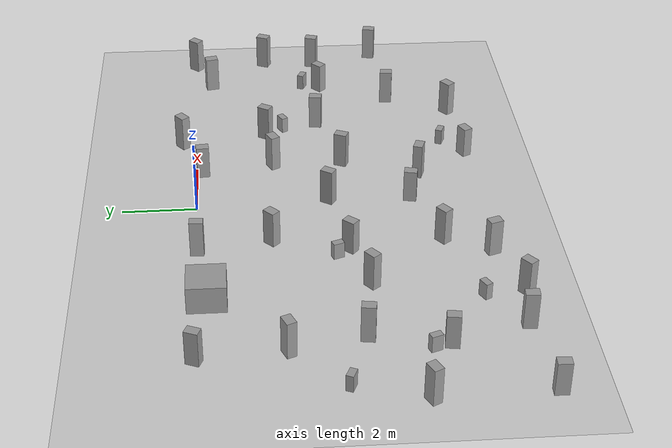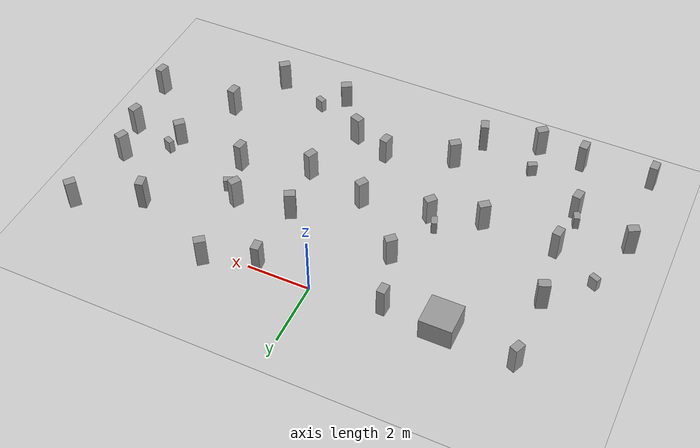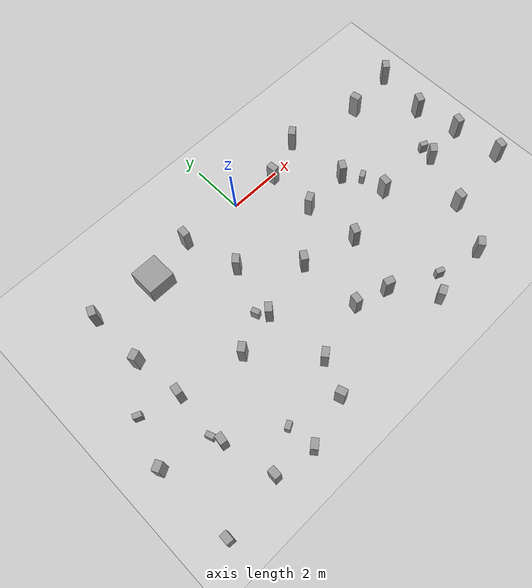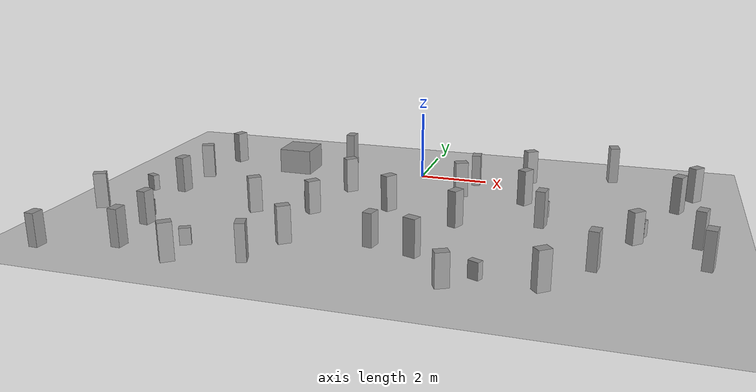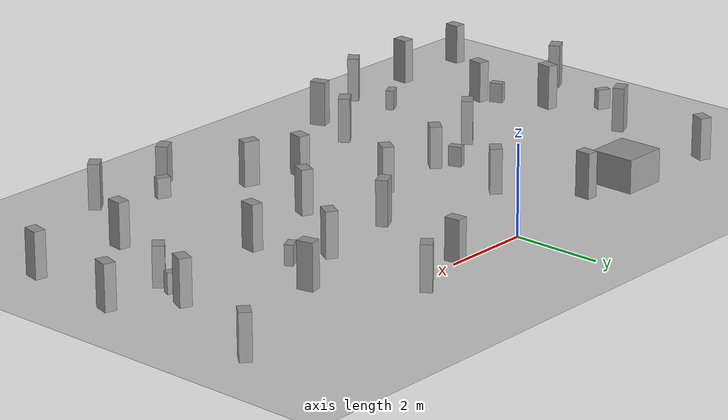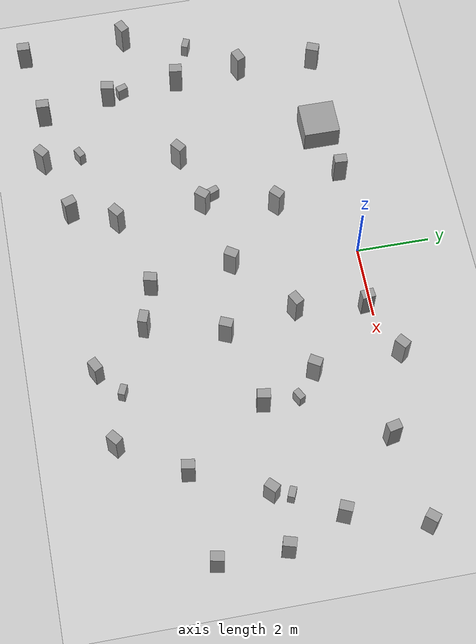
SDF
<sdf version="1.6">
 <world name="default">
  <model name="ground_plane">
   <static>1</static>
   <link name="link">
    <collision name="collision">
     <geometry><plane><normal>0 0 1</normal><size>100 100</size></plane></geometry>
     <surface><friction><ode><mu>100</mu><mu2>50</mu2></ode></friction></surface>
    </collision>
    <visual name="visual">
     <cast_shadows>0</cast_shadows>
     <geometry><plane><normal>0 0 1</normal><size>100 100</size></plane></geometry>
     <material>
      <script><uri>file://media/materials/scripts/gazebo.material</uri><name>Gazebo/Grey</name></script>
     </material>
    </visual>
   </link>
  </model>
  <model name="unit_box_0_clone">
   <pose>-2.30563 -0.046704 0.708059 -2e-06 -1e-06 -1.6164</pose>
   <link name="link">
    <inertial>
     <mass>1</mass>
     <inertia>
      <ixx>0.166667</ixx>
      <ixy>0</ixy>
      <ixz>0</ixz>
      <iyy>0.166667</iyy>
      <iyz>0</iyz>
      <izz>0.166667</izz>
     </inertia>
    </inertial>
    <collision name="collision"><geometry><box><size>0.350929 0.254556 1</size></box></geometry></collision>
    <visual name="visual">
     <geometry><box><size>0.350929 0.254556 1</size></box></geometry>
     <material>
      <script><name>Gazebo/Grey</name><uri>file://media/materials/scripts/gazebo.material</uri></script>
     </material>
    </visual>
   </link>
  </model>
  <model name="unit_box_0_clone_0">
   <pose>-1.68736 -1.95564 0.515453 -1e-06 3e-06 0.766991</pose>
   <link name="link">
    <inertial>
     <mass>1</mass>
     <inertia>
      <ixx>0.166667</ixx>
      <ixy>0</ixy>
      <ixz>0</ixz>
      <iyy>0.166667</iyy>
      <iyz>0</iyz>
      <izz>0.166667</izz>
     </inertia>
    </inertial>
    <collision name="collision">
     <geometry><box><size>0.350929 0.254556 0.999995</size></box></geometry>
    </collision>
    <visual name="visual">
     <geometry><box><size>0.350929 0.254556 0.999995</size></box></geometry>
     <material>
      <script><name>Gazebo/Grey</name><uri>file://media/materials/scripts/gazebo.material</uri></script>
     </material>
    </visual>
   </link>
  </model>
  <model name="unit_box_0_clone_2">
   <pose>1.67378 -2.12154 0.736399 1e-06 1e-06 0.477181</pose>
   <link name="link">
    <inertial>
     <mass>1</mass>
     <inertia>
      <ixx>0.166667</ixx>
      <ixy>0</ixy>
      <ixz>0</ixz>
      <iyy>0.166667</iyy>
      <iyz>0</iyz>
      <izz>0.166667</izz>
     </inertia>
    </inertial>
    <collision name="collision"><geometry><box><size>0.350929 0.254556 1</size></box></geometry></collision>
    <visual name="visual">
     <geometry><box><size>0.350929 0.254556 1</size></box></geometry>
     <material>
      <script><name>Gazebo/Grey</name><uri>file://media/materials/scripts/gazebo.material</uri></script>
     </material>
    </visual>
   </link>
  </model>
  <model name="unit_box_0_clone_3">
   <pose>1.74908 -0.168144 0.412109 0 0 -1.47741</pose>
   <link name="link">
    <inertial>
     <mass>1</mass>
     <inertia>
      <ixx>0.166667</ixx>
      <ixy>0</ixy>
      <ixz>0</ixz>
      <iyy>0.166667</iyy>
      <iyz>0</iyz>
      <izz>0.166667</izz>
     </inertia>
    </inertial>
    <collision name="collision">
     <geometry><box><size>0.350929 0.254556 0.999998</size></box></geometry>
    </collision>
    <visual name="visual">
     <geometry><box><size>0.350929 0.254556 0.999998</size></box></geometry>
     <material>
      <script><name>Gazebo/Grey</name><uri>file://media/materials/scripts/gazebo.material</uri></script>
     </material>
    </visual>
   </link>
  </model>
  <model name="unit_box_0_clone_0_clone_1">
   <pose>3.47727 -1.97237 0.628163 -2e-06 1e-06 1.03355</pose>
   <link name="link">
    <inertial>
     <mass>1</mass>
     <inertia>
      <ixx>0.166667</ixx>
      <ixy>0</ixy>
      <ixz>0</ixz>
      <iyy>0.166667</iyy>
      <iyz>0</iyz>
      <izz>0.166667</izz>
     </inertia>
    </inertial>
    <collision name="collision"><geometry><box><size>0.350929 0.254556 1</size></box></geometry></collision>
    <visual name="visual">
     <geometry><box><size>0.350929 0.254556 1</size></box></geometry>
     <material>
      <script><name>Gazebo/Grey</name><uri>file://media/materials/scripts/gazebo.material</uri></script>
     </material>
    </visual>
   </link>
  </model>
  <model name="unit_box_0_clone_0_clone_clone_7">
   <pose>-3.65886 -4.36451 0.499999 -2e-06 -2e-06 0.673769</pose>
   <link name="link">
    <inertial>
     <mass>1</mass>
     <inertia>
      <ixx>0.166667</ixx>
      <ixy>0</ixy>
      <ixz>0</ixz>
      <iyy>0.166667</iyy>
      <iyz>0</iyz>
      <izz>0.166667</izz>
     </inertia>
    </inertial>
    <collision name="collision"><geometry><box><size>0.350929 0.254556 1</size></box></geometry></collision>
    <visual name="visual">
     <geometry><box><size>0.350929 0.254556 1</size></box></geometry>
     <material>
      <script><name>Gazebo/Grey</name><uri>file://media/materials/scripts/gazebo.material</uri></script>
     </material>
    </visual>
   </link>
  </model>
  <model name="unit_box_0_clone_0_clone_clone_8">
   <pose>-2.09802 -3.96334 0.419 2e-06 3e-06 0.85609</pose>
   <link name="link">
    <inertial>
     <mass>1</mass>
     <inertia>
      <ixx>0.166667</ixx>
      <ixy>0</ixy>
      <ixz>0</ixz>
      <iyy>0.166667</iyy>
      <iyz>0</iyz>
      <izz>0.166667</izz>
     </inertia>
    </inertial>
    <collision name="collision">
     <geometry><box><size>0.350929 0.254556 0.999996</size></box></geometry>
    </collision>
    <visual name="visual">
     <geometry><box><size>0.350929 0.254556 0.999996</size></box></geometry>
     <material>
      <script><name>Gazebo/Grey</name><uri>file://media/materials/scripts/gazebo.material</uri></script>
     </material>
    </visual>
   </link>
  </model>
  <model name="unit_box_0_clone_0_clone_clone_9">
   <pose>-0.023237 -3.53866 0.634024 -1e-06 2e-06 0.998465</pose>
   <link name="link">
    <inertial>
     <mass>1</mass>
     <inertia>
      <ixx>0.166667</ixx>
      <ixy>0</ixy>
      <ixz>0</ixz>
      <iyy>0.166667</iyy>
      <iyz>0</iyz>
      <izz>0.166667</izz>
     </inertia>
    </inertial>
    <collision name="collision"><geometry><box><size>0.350929 0.254556 1</size></box></geometry></collision>
    <visual name="visual">
     <geometry><box><size>0.350929 0.254556 1</size></box></geometry>
     <material>
      <script><name>Gazebo/Grey</name><uri>file://media/materials/scripts/gazebo.material</uri></script>
     </material>
    </visual>
   </link>
  </model>
  <model name="unit_box_0_clone_0_clone_clone_10">
   <pose>1.95385 -4.04506 0.568063 -2e-06 1e-06 1.15943</pose>
   <link name="link">
    <inertial>
     <mass>1</mass>
     <inertia>
      <ixx>0.166667</ixx>
      <ixy>0</ixy>
      <ixz>0</ixz>
      <iyy>0.166667</iyy>
      <iyz>0</iyz>
      <izz>0.166667</izz>
     </inertia>
    </inertial>
    <collision name="collision"><geometry><box><size>0.350929 0.254556 1</size></box></geometry></collision>
    <visual name="visual">
     <geometry><box><size>0.350929 0.254556 1</size></box></geometry>
     <material>
      <script><name>Gazebo/Grey</name><uri>file://media/materials/scripts/gazebo.material</uri></script>
     </material>
    </visual>
   </link>
  </model>
  <model name="unit_box_0_clone_0_clone_clone_11">
   <pose>4.11695 -3.46181 0.58245 1e-06 -2e-06 1.42678</pose>
   <link name="link">
    <inertial>
     <mass>1</mass>
     <inertia>
      <ixx>0.166667</ixx>
      <ixy>0</ixy>
      <ixz>0</ixz>
      <iyy>0.166667</iyy>
      <iyz>0</iyz>
      <izz>0.166667</izz>
     </inertia>
    </inertial>
    <collision name="collision">
     <geometry><box><size>0.350929 0.254556 0.999998</size></box></geometry>
    </collision>
    <visual name="visual">
     <geometry><box><size>0.350929 0.254556 0.999998</size></box></geometry>
     <material>
      <script><name>Gazebo/Grey</name><uri>file://media/materials/scripts/gazebo.material</uri></script>
     </material>
    </visual>
   </link>
  </model>
  <model name="unit_box_0_clone_0_clone_clone_13">
   <pose>-1.91435 -6.3821 0.549816 -2e-06 -0 0.653676</pose>
   <link name="link">
    <inertial>
     <mass>1</mass>
     <inertia>
      <ixx>0.166667</ixx>
      <ixy>0</ixy>
      <ixz>0</ixz>
      <iyy>0.166667</iyy>
      <iyz>0</iyz>
      <izz>0.166667</izz>
     </inertia>
    </inertial>
    <collision name="collision"><geometry><box><size>0.350929 0.254557 1</size></box></geometry></collision>
    <visual name="visual">
     <geometry><box><size>0.350929 0.254557 1</size></box></geometry>
     <material>
      <script><name>Gazebo/Grey</name><uri>file://media/materials/scripts/gazebo.material</uri></script>
     </material>
    </visual>
   </link>
  </model>
  <model name="unit_box_0_clone_0_clone_clone_14">
   <pose>0.1792 -5.78595 0.396013 -2e-06 3e-06 1.37071</pose>
   <link name="link">
    <inertial>
     <mass>1</mass>
     <inertia>
      <ixx>0.166667</ixx>
      <ixy>0</ixy>
      <ixz>0</ixz>
      <iyy>0.166667</iyy>
      <iyz>0</iyz>
      <izz>0.166667</izz>
     </inertia>
    </inertial>
    <collision name="collision">
     <geometry><box><size>0.350929 0.254556 0.999999</size></box></geometry>
    </collision>
    <visual name="visual">
     <geometry><box><size>0.350929 0.254556 0.999999</size></box></geometry>
     <material>
      <script><name>Gazebo/Grey</name><uri>file://media/materials/scripts/gazebo.material</uri></script>
     </material>
    </visual>
   </link>
  </model>
  <model name="unit_box_0_clone_0_clone_clone_15">
   <pose>1.35298 -6.15602 0.5 0 0 -0.344877</pose>
   <link name="link">
    <inertial>
     <mass>1</mass>
     <inertia>
      <ixx>0.166667</ixx>
      <ixy>0</ixy>
      <ixz>0</ixz>
      <iyy>0.166667</iyy>
      <iyz>0</iyz>
      <izz>0.166667</izz>
     </inertia>
    </inertial>
    <collision name="collision"><geometry><box><size>0.350929 0.254556 1</size></box></geometry></collision>
    <visual name="visual">
     <geometry><box><size>0.350929 0.254556 1</size></box></geometry>
     <material>
      <script><name>Gazebo/Grey</name><uri>file://media/materials/scripts/gazebo.material</uri></script>
     </material>
    </visual>
   </link>
  </model>
  <model name="unit_box_0_clone_0_clone_clone_11_clone">
   <pose>5.62019 -5.70113 0.499999 -3e-06 -3e-06 1.42765</pose>
   <link name="link">
    <inertial>
     <mass>1</mass>
     <inertia>
      <ixx>0.166667</ixx>
      <ixy>0</ixy>
      <ixz>0</ixz>
      <iyy>0.166667</iyy>
      <iyz>0</iyz>
      <izz>0.166667</izz>
     </inertia>
    </inertial>
    <collision name="collision"><geometry><box><size>0.350929 0.254556 1</size></box></geometry></collision>
    <visual name="visual">
     <geometry><box><size>0.350929 0.254556 1</size></box></geometry>
     <material>
      <script><name>Gazebo/Grey</name><uri>file://media/materials/scripts/gazebo.material</uri></script>
     </material>
    </visual>
   </link>
  </model>
  <model name="unit_box_0_clone_0_clone_clone_11_clone_0">
   <pose>-6.05663 -6.01449 0.411224 0 -0 1.42732</pose>
   <link name="link">
    <inertial>
     <mass>1</mass>
     <inertia>
      <ixx>0.166667</ixx>
      <ixy>0</ixy>
      <ixz>0</ixz>
      <iyy>0.166667</iyy>
      <iyz>0</iyz>
      <izz>0.166667</izz>
     </inertia>
    </inertial>
    <collision name="collision">
     <geometry><box><size>0.350928 0.254556 0.999998</size></box></geometry>
    </collision>
    <visual name="visual">
     <geometry><box><size>0.350928 0.254556 0.999998</size></box></geometry>
     <material>
      <script><name>Gazebo/Grey</name><uri>file://media/materials/scripts/gazebo.material</uri></script>
     </material>
    </visual>
   </link>
  </model>
  <model name="unit_box_0_clone_6">
   <pose>6.50577 -3.70991 0.354214 0 -0 0.772544</pose>
   <link name="link">
    <inertial>
     <mass>1</mass>
     <inertia>
      <ixx>0.166667</ixx>
      <ixy>0</ixy>
      <ixz>0</ixz>
      <iyy>0.166667</iyy>
      <iyz>0</iyz>
      <izz>0.166667</izz>
     </inertia>
    </inertial>
    <collision name="collision">
     <geometry><box><size>0.350929 0.254556 0.999996</size></box></geometry>
    </collision>
    <visual name="visual">
     <geometry><box><size>0.350929 0.254556 0.999996</size></box></geometry>
     <material>
      <script><name>Gazebo/Grey</name><uri>file://media/materials/scripts/gazebo.material</uri></script>
     </material>
    </visual>
   </link>
  </model>
  <model name="unit_box_0_clone_1_clone">
   <pose>5.75602 -0.455362 1.05004 -1e-06 3e-06 -1.36464</pose>
   <link name="link">
    <inertial>
     <mass>1</mass>
     <inertia>
      <ixx>0.166667</ixx>
      <ixy>0</ixy>
      <ixz>0</ixz>
      <iyy>0.166667</iyy>
      <iyz>0</iyz>
      <izz>0.166667</izz>
     </inertia>
    </inertial>
    <collision name="collision"><geometry><box><size>0.35093 0.254556 0.999997</size></box></geometry></collision>
    <visual name="visual">
     <geometry><box><size>0.35093 0.254556 0.999997</size></box></geometry>
     <material>
      <script><name>Gazebo/Grey</name><uri>file://media/materials/scripts/gazebo.material</uri></script>
     </material>
    </visual>
   </link>
  </model>
  <model name="unit_box_0_clone_4_clone">
   <pose>-6.27141 0.01616 0.427694 2e-06 1e-06 1.1755</pose>
   <link name="link">
    <inertial>
     <mass>1</mass>
     <inertia>
      <ixx>0.166667</ixx>
      <ixy>0</ixy>
      <ixz>0</ixz>
      <iyy>0.166667</iyy>
      <iyz>0</iyz>
      <izz>0.166667</izz>
     </inertia>
    </inertial>
    <collision name="collision">
     <geometry><box><size>0.350929 0.254556 0.999998</size></box></geometry>
    </collision>
    <visual name="visual">
     <geometry><box><size>0.350929 0.254556 0.999998</size></box></geometry>
     <material>
      <script><name>Gazebo/Grey</name><uri>file://media/materials/scripts/gazebo.material</uri></script>
     </material>
    </visual>
   </link>
  </model>
  <model name="unit_box_0_clone_0_clone_clone_5_clone">
   <pose>-6.25568 -2.1773 0.613537 1e-06 2e-06 0.402818</pose>
   <link name="link">
    <inertial>
     <mass>1</mass>
     <inertia>
      <ixx>0.166667</ixx>
      <ixy>0</ixy>
      <ixz>0</ixz>
      <iyy>0.166667</iyy>
      <iyz>0</iyz>
      <izz>0.166667</izz>
     </inertia>
    </inertial>
    <collision name="collision">
     <geometry><box><size>0.350929 0.254556 0.999992</size></box></geometry>
    </collision>
    <visual name="visual">
     <geometry><box><size>0.350929 0.254556 0.999992</size></box></geometry>
     <material>
      <script><name>Gazebo/Grey</name><uri>file://media/materials/scripts/gazebo.material</uri></script>
     </material>
    </visual>
   </link>
  </model>
  <model name="unit_box_0_clone_0_clone_clone_11_clone_1">
   <pose>-6.03872 -4.03197 0.768883 2e-06 -1e-06 1.42723</pose>
   <link name="link">
    <inertial>
     <mass>1</mass>
     <inertia>
      <ixx>0.166667</ixx>
      <ixy>0</ixy>
      <ixz>0</ixz>
      <iyy>0.166667</iyy>
      <iyz>0</iyz>
      <izz>0.166667</izz>
     </inertia>
    </inertial>
    <collision name="collision"><geometry><box><size>0.350929 0.254556 1</size></box></geometry></collision>
    <visual name="visual">
     <geometry><box><size>0.350929 0.254556 1</size></box></geometry>
     <material>
      <script><name>Gazebo/Grey</name><uri>file://media/materials/scripts/gazebo.material</uri></script>
     </material>
    </visual>
   </link>
  </model>
  <model name="unit_box_0_clone_clone_0">
   <pose>-7.82342 -8.19991 0.384839 0 0 -1.61434</pose>
   <link name="link">
    <inertial>
     <mass>1</mass>
     <inertia>
      <ixx>0.166667</ixx>
      <ixy>0</ixy>
      <ixz>0</ixz>
      <iyy>0.166667</iyy>
      <iyz>0</iyz>
      <izz>0.166667</izz>
     </inertia>
    </inertial>
    <collision name="collision">
     <geometry><box><size>0.350929 0.254556 0.999998</size></box></geometry>
    </collision>
    <visual name="visual">
     <geometry><box><size>0.350929 0.254556 0.999998</size></box></geometry>
     <material>
      <script><name>Gazebo/Grey</name><uri>file://media/materials/scripts/gazebo.material</uri></script>
     </material>
    </visual>
   </link>
  </model>
  <model name="unit_box_0_clone_2_clone">
   <pose>-7.93195 -5.30091 0.499999 -3e-06 -2e-06 0.477774</pose>
   <link name="link">
    <inertial>
     <mass>1</mass>
     <inertia>
      <ixx>0.166667</ixx>
      <ixy>0</ixy>
      <ixz>0</ixz>
      <iyy>0.166667</iyy>
      <iyz>0</iyz>
      <izz>0.166667</izz>
     </inertia>
    </inertial>
    <collision name="collision"><geometry><box><size>0.350929 0.254556 1</size></box></geometry></collision>
    <visual name="visual">
     <geometry><box><size>0.350929 0.254556 1</size></box></geometry>
     <material>
      <script><name>Gazebo/Grey</name><uri>file://media/materials/scripts/gazebo.material</uri></script>
     </material>
    </visual>
   </link>
  </model>
  <model name="unit_box_0_clone_0_clone_clone_8_clone_2">
   <pose>8.04719 0.051567 0.499999 -1e-06 -3e-06 0.856447</pose>
   <link name="link">
    <inertial>
     <mass>1</mass>
     <inertia>
      <ixx>0.166667</ixx>
      <ixy>0</ixy>
      <ixz>0</ixz>
      <iyy>0.166667</iyy>
      <iyz>0</iyz>
      <izz>0.166667</izz>
     </inertia>
    </inertial>
    <collision name="collision"><geometry><box><size>0.350929 0.254556 1</size></box></geometry></collision>
    <visual name="visual">
     <geometry><box><size>0.350929 0.254556 1</size></box></geometry>
     <material>
      <script><name>Gazebo/Grey</name><uri>file://media/materials/scripts/gazebo.material</uri></script>
     </material>
    </visual>
   </link>
  </model>
  <model name="unit_box_0_clone_0_clone_clone_10_clone_clone">
   <pose>7.52036 -2.0598 0.844327 -0 -1e-06 1.15994</pose>
   <link name="link">
    <inertial>
     <mass>1</mass>
     <inertia>
      <ixx>0.166667</ixx>
      <ixy>0</ixy>
      <ixz>0</ixz>
      <iyy>0.166667</iyy>
      <iyz>0</iyz>
      <izz>0.166667</izz>
     </inertia>
    </inertial>
    <collision name="collision"><geometry><box><size>0.350929 0.254556 1</size></box></geometry></collision>
    <visual name="visual">
     <geometry><box><size>0.350929 0.254556 1</size></box></geometry>
     <material>
      <script><name>Gazebo/Grey</name><uri>file://media/materials/scripts/gazebo.material</uri></script>
     </material>
    </visual>
   </link>
  </model>
  <model name="unit_box_0_clone_0_clone_clone_6_clone">
   <pose>8.0583 -3.57847 0.500001 -2e-06 -1e-06 1.28745</pose>
   <link name="link">
    <inertial>
     <mass>1</mass>
     <inertia>
      <ixx>0.166667</ixx>
      <ixy>0</ixy>
      <ixz>0</ixz>
      <iyy>0.166667</iyy>
      <iyz>0</iyz>
      <izz>0.166667</izz>
     </inertia>
    </inertial>
    <collision name="collision"><geometry><box><size>0.350929 0.254555 1</size></box></geometry></collision>
    <visual name="visual">
     <geometry><box><size>0.350929 0.254555 1</size></box></geometry>
     <material>
      <script><name>Gazebo/Grey</name><uri>file://media/materials/scripts/gazebo.material</uri></script>
     </material>
    </visual>
   </link>
  </model>
  <model name="unit_box_0_clone_5_clone_1">
   <pose>8.152 -5.41497 0.7051 0 1e-06 1.36951</pose>
   <link name="link">
    <inertial>
     <mass>1</mass>
     <inertia>
      <ixx>0.166667</ixx>
      <ixy>0</ixy>
      <ixz>0</ixz>
      <iyy>0.166667</iyy>
      <iyz>0</iyz>
      <izz>0.166667</izz>
     </inertia>
    </inertial>
    <collision name="collision"><geometry><box><size>0.350929 0.254556 1</size></box></geometry></collision>
    <visual name="visual">
     <geometry><box><size>0.350929 0.254556 1</size></box></geometry>
     <material>
      <script><name>Gazebo/Grey</name><uri>file://media/materials/scripts/gazebo.material</uri></script>
     </material>
    </visual>
   </link>
  </model>
  <model name="unit_box_0_clone_0_clone_clone_7_clone_0">
   <pose>4.62146 -7.41543 0.608532 -1e-06 1e-06 0.674114</pose>
   <link name="link">
    <inertial>
     <mass>1</mass>
     <inertia>
      <ixx>0.166667</ixx>
      <ixy>0</ixy>
      <ixz>0</ixz>
      <iyy>0.166667</iyy>
      <iyz>0</iyz>
      <izz>0.166667</izz>
     </inertia>
    </inertial>
    <collision name="collision">
     <geometry><box><size>0.350929 0.254556 0.999994</size></box></geometry>
    </collision>
    <visual name="visual">
     <geometry><box><size>0.350929 0.254556 0.999994</size></box></geometry>
     <material>
      <script><name>Gazebo/Grey</name><uri>file://media/materials/scripts/gazebo.material</uri></script>
     </material>
    </visual>
   </link>
  </model>
  <model name="unit_box_0_clone_0_clone_clone_1_clone">
   <pose>-2.45198 -7.60291 0.499999 3e-06 2e-06 -1.24303</pose>
   <link name="link">
    <inertial>
     <mass>1</mass>
     <inertia>
      <ixx>0.166667</ixx>
      <ixy>0</ixy>
      <ixz>0</ixz>
      <iyy>0.166667</iyy>
      <iyz>0</iyz>
      <izz>0.166667</izz>
     </inertia>
    </inertial>
    <collision name="collision"><geometry><box><size>0.350929 0.254556 1</size></box></geometry></collision>
    <visual name="visual">
     <geometry><box><size>0.350929 0.254556 1</size></box></geometry>
     <material>
      <script><name>Gazebo/Grey</name><uri>file://media/materials/scripts/gazebo.material</uri></script>
     </material>
    </visual>
   </link>
  </model>
  <model name="unit_box_0_clone_0_clone_clone_7_clone_1">
   <pose>-4.18006 -8.14079 0.499999 -1e-06 -3e-06 0.673584</pose>
   <link name="link">
    <inertial>
     <mass>1</mass>
     <inertia>
      <ixx>0.166667</ixx>
      <ixy>0</ixy>
      <ixz>0</ixz>
      <iyy>0.166667</iyy>
      <iyz>0</iyz>
      <izz>0.166667</izz>
     </inertia>
    </inertial>
    <collision name="collision"><geometry><box><size>0.350929 0.254556 1</size></box></geometry></collision>
    <visual name="visual">
     <geometry><box><size>0.350929 0.254556 1</size></box></geometry>
     <material>
      <script><name>Gazebo/Grey</name><uri>file://media/materials/scripts/gazebo.material</uri></script>
     </material>
    </visual>
   </link>
  </model>
  <model name="unit_box_0_clone_clone_clone">
   <pose>-5.62975 -7.90768 0.624624 2e-06 -1e-06 -1.61492</pose>
   <link name="link">
    <inertial>
     <mass>1</mass>
     <inertia>
      <ixx>0.166667</ixx>
      <ixy>0</ixy>
      <ixz>0</ixz>
      <iyy>0.166667</iyy>
      <iyz>0</iyz>
      <izz>0.166667</izz>
     </inertia>
    </inertial>
    <collision name="collision"><geometry><box><size>0.350929 0.254556 1</size></box></geometry></collision>
    <visual name="visual">
     <geometry><box><size>0.350929 0.254556 1</size></box></geometry>
     <material>
      <script><name>Gazebo/Grey</name><uri>file://media/materials/scripts/gazebo.material</uri></script>
     </material>
    </visual>
   </link>
  </model>
  <model name="unit_box_0_clone_2_clone_0">
   <pose>2.43175 -7.60912 0.348538 0 -0 0.477803</pose>
   <link name="link">
    <inertial>
     <mass>1</mass>
     <inertia>
      <ixx>0.166667</ixx>
      <ixy>0</ixy>
      <ixz>0</ixz>
      <iyy>0.166667</iyy>
      <iyz>0</iyz>
      <izz>0.166667</izz>
     </inertia>
    </inertial>
    <collision name="collision">
     <geometry><box><size>0.350929 0.254556 0.999997</size></box></geometry>
    </collision>
    <visual name="visual">
     <geometry><box><size>0.350929 0.254556 0.999997</size></box></geometry>
     <material>
      <script><name>Gazebo/Grey</name><uri>file://media/materials/scripts/gazebo.material</uri></script>
     </material>
    </visual>
   </link>
  </model>
  <model name="unit_box_0">
   <pose>-3.98217 -0.276258 0.225675 0 0 -7.6e-05</pose>
   <link name="link">
    <inertial>
     <mass>1</mass>
     <inertia>
      <ixx>0.166667</ixx>
      <ixy>0</ixy>
      <ixz>0</ixz>
      <iyy>0.166667</iyy>
      <iyz>0</iyz>
      <izz>0.166667</izz>
     </inertia>
    </inertial>
    <collision name="collision"><geometry><box><size>1 0.999997 0.999995</size></box></geometry></collision>
    <visual name="visual">
     <geometry><box><size>1 0.999997 0.999995</size></box></geometry>
     <material>
      <script><name>Gazebo/Grey</name><uri>file://media/materials/scripts/gazebo.material</uri></script>
     </material>
    </visual>
   </link>
  </model>
  <model name="unit_box_0_clone_11_clone">
   <pose>4.05138 -2.49146 0.225674 -4e-06 2e-06 -1.08205</pose>
   <link name="link">
    <inertial>
     <mass>1</mass>
     <inertia>
      <ixx>0.166667</ixx>
      <ixy>0</ixy>
      <ixz>0</ixz>
      <iyy>0.166667</iyy>
      <iyz>0</iyz>
      <izz>0.166667</izz>
     </inertia>
    </inertial>
    <collision name="collision"><geometry><box><size>0.184899 0.295122 0.45135</size></box></geometry></collision>
    <visual name="visual">
     <geometry><box><size>0.184899 0.295122 0.45135</size></box></geometry>
     <material>
      <script><name>Gazebo/Grey</name><uri>file://media/materials/scripts/gazebo.material</uri></script>
     </material>
    </visual>
   </link>
  </model>
  <model name="unit_box_0_clone_11_clone_1">
   <pose>-4.2722 -7.09387 0.225674 4e-06 -3e-06 -1.08207</pose>
   <link name="link">
    <inertial>
     <mass>1</mass>
     <inertia>
      <ixx>0.166667</ixx>
      <ixy>0</ixy>
      <ixz>0</ixz>
      <iyy>0.166667</iyy>
      <iyz>0</iyz>
      <izz>0.166667</izz>
     </inertia>
    </inertial>
    <collision name="collision"><geometry><box><size>0.184899 0.295122 0.45135</size></box></geometry></collision>
    <visual name="visual">
     <geometry><box><size>0.184899 0.295122 0.45135</size></box></geometry>
     <material>
      <script><name>Gazebo/Grey</name><uri>file://media/materials/scripts/gazebo.material</uri></script>
     </material>
    </visual>
   </link>
  </model>
  <model name="unit_box_0_clone_11_clone_3">
   <pose>6.63307 -3.20759 0.225674 -5e-06 -1e-06 -1.98782</pose>
   <link name="link">
    <inertial>
     <mass>1</mass>
     <inertia>
      <ixx>0.166667</ixx>
      <ixy>0</ixy>
      <ixz>0</ixz>
      <iyy>0.166667</iyy>
      <iyz>0</iyz>
      <izz>0.166667</izz>
     </inertia>
    </inertial>
    <collision name="collision"><geometry><box><size>0.184899 0.295122 0.45135</size></box></geometry></collision>
    <visual name="visual">
     <geometry><box><size>0.184899 0.295122 0.45135</size></box></geometry>
     <material>
      <script><name>Gazebo/Grey</name><uri>file://media/materials/scripts/gazebo.material</uri></script>
     </material>
    </visual>
   </link>
  </model>
  <model name="unit_box_0_clone_11_clone_3_clone">
   <pose>3.08624 -7.0058 0.225675 2e-06 3e-06 -1.98784</pose>
   <link name="link">
    <inertial>
     <mass>1</mass>
     <inertia>
      <ixx>0.166667</ixx>
      <ixy>0</ixy>
      <ixz>0</ixz>
      <iyy>0.166667</iyy>
      <iyz>0</iyz>
      <izz>0.166667</izz>
     </inertia>
    </inertial>
    <collision name="collision"><geometry><box><size>0.184899 0.295122 0.45135</size></box></geometry></collision>
    <visual name="visual">
     <geometry><box><size>0.184899 0.295122 0.45135</size></box></geometry>
     <material>
      <script><name>Gazebo/Grey</name><uri>file://media/materials/scripts/gazebo.material</uri></script>
     </material>
    </visual>
   </link>
  </model>
  <model name="unit_box_0_clone_11_clone_3_clone_1">
   <pose>-7.39777 -3.52713 0.225674 -3e-06 -4e-06 -1.98776</pose>
   <link name="link">
    <inertial>
     <mass>1</mass>
     <inertia>
      <ixx>0.166667</ixx>
      <ixy>0</ixy>
      <ixz>0</ixz>
      <iyy>0.166667</iyy>
      <iyz>0</iyz>
      <izz>0.166667</izz>
     </inertia>
    </inertial>
    <collision name="collision"><geometry><box><size>0.184899 0.295122 0.45135</size></box></geometry></collision>
    <visual name="visual">
     <geometry><box><size>0.184899 0.295122 0.45135</size></box></geometry>
     <material>
      <script><name>Gazebo/Grey</name><uri>file://media/materials/scripts/gazebo.material</uri></script>
     </material>
    </visual>
   </link>
  </model>
  <model name="unit_box_0_clone_11_clone_3_clone_2_clone_0">
   <pose>-6.19558 -5.59562 0.225674 5e-06 -2e-06 -2.78635</pose>
   <link name="link">
    <inertial>
     <mass>1</mass>
     <inertia>
      <ixx>0.166667</ixx>
      <ixy>0</ixy>
      <ixz>0</ixz>
      <iyy>0.166667</iyy>
      <iyz>0</iyz>
      <izz>0.166667</izz>
     </inertia>
    </inertial>
    <collision name="collision"><geometry><box><size>0.184899 0.295122 0.45135</size></box></geometry></collision>
    <visual name="visual">
     <geometry><box><size>0.184899 0.295122 0.45135</size></box></geometry>
     <material>
      <script><name>Gazebo/Grey</name><uri>file://media/materials/scripts/gazebo.material</uri></script>
     </material>
    </visual>
   </link>
  </model>
  <model name="unit_box_0_clone_11_clone_3_clone_2_clone_1">
   <pose>-2.38973 -3.61414 0.225674 5e-06 -2e-06 -2.78637</pose>
   <link name="link">
    <inertial>
     <mass>1</mass>
     <inertia>
      <ixx>0.166667</ixx>
      <ixy>0</ixy>
      <ixz>0</ixz>
      <iyy>0.166667</iyy>
      <iyz>0</iyz>
      <izz>0.166667</izz>
     </inertia>
    </inertial>
    <collision name="collision"><geometry><box><size>0.184899 0.295122 0.45135</size></box></geometry></collision>
    <visual name="visual">
     <geometry><box><size>0.184899 0.295122 0.45135</size></box></geometry>
     <material>
      <script><name>Gazebo/Grey</name><uri>file://media/materials/scripts/gazebo.material</uri></script>
     </material>
    </visual>
   </link>
  </model>
  <model name="unit_box_0_clone_0_clone_clone_7_clone_2">
   <pose>3.30248 0.407134 0.499999 -1e-06 -3e-06 0.673763</pose>
   <link name="link">
    <inertial>
     <mass>1</mass>
     <inertia>
      <ixx>0.166667</ixx>
      <ixy>0</ixy>
      <ixz>0</ixz>
      <iyy>0.166667</iyy>
      <iyz>0</iyz>
      <izz>0.166667</izz>
     </inertia>
    </inertial>
    <collision name="collision"><geometry><box><size>0.350929 0.254556 1</size></box></geometry></collision>
    <visual name="visual">
     <geometry><box><size>0.350929 0.254556 1</size></box></geometry>
     <material>
      <script><name>Gazebo/Grey</name><uri>file://media/materials/scripts/gazebo.material</uri></script>
     </material>
    </visual>
   </link>
  </model>
 </world>
</sdf>
